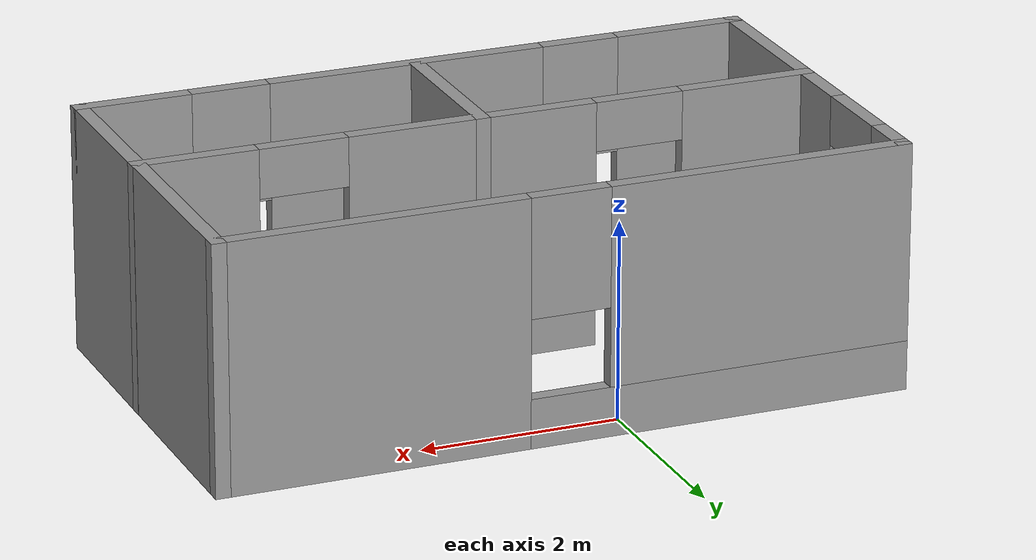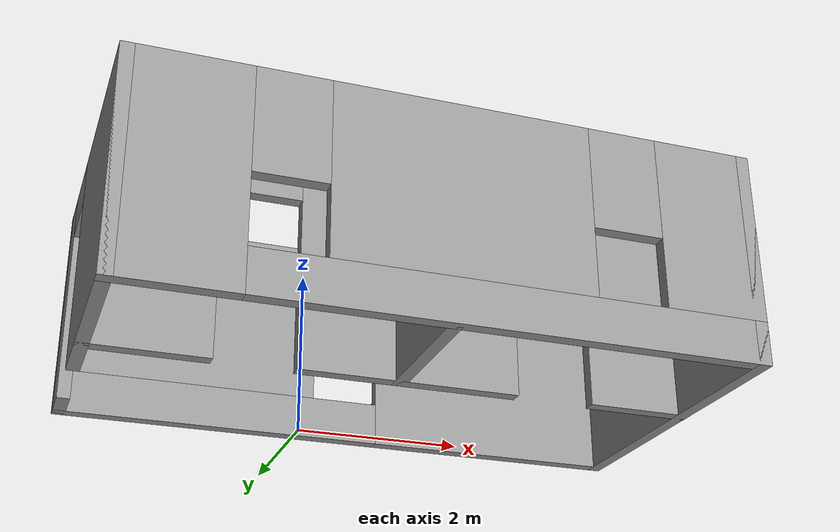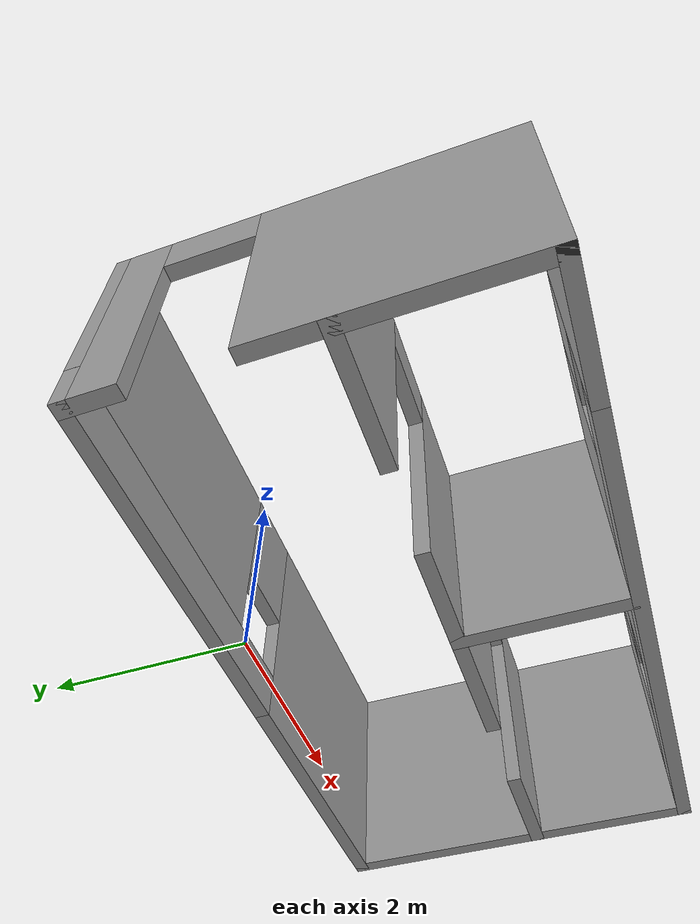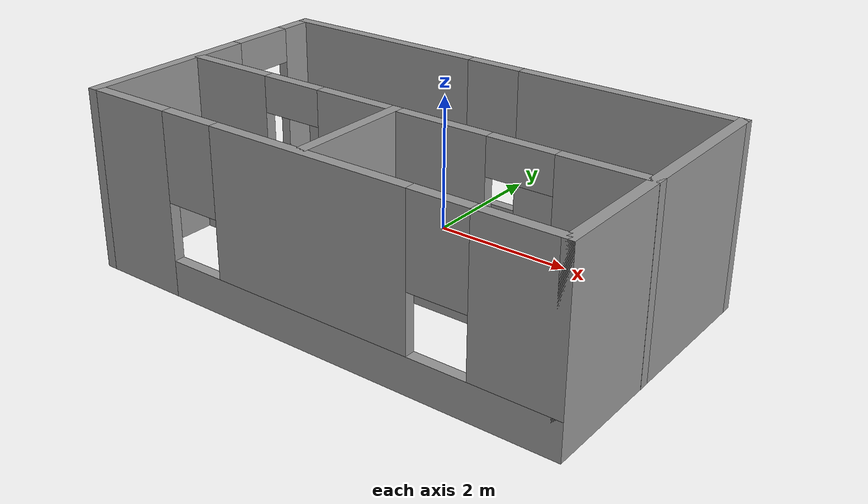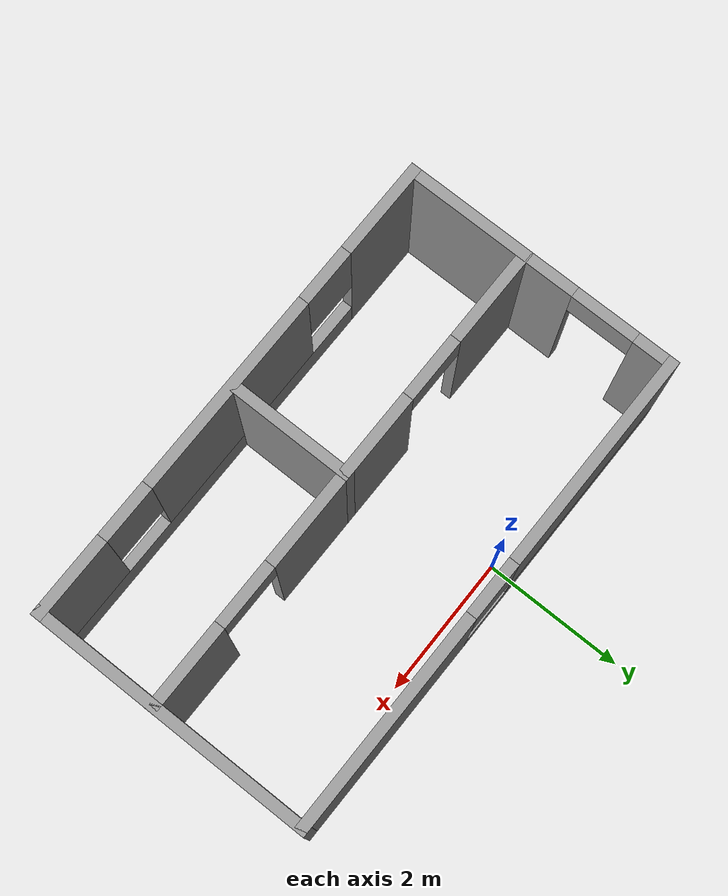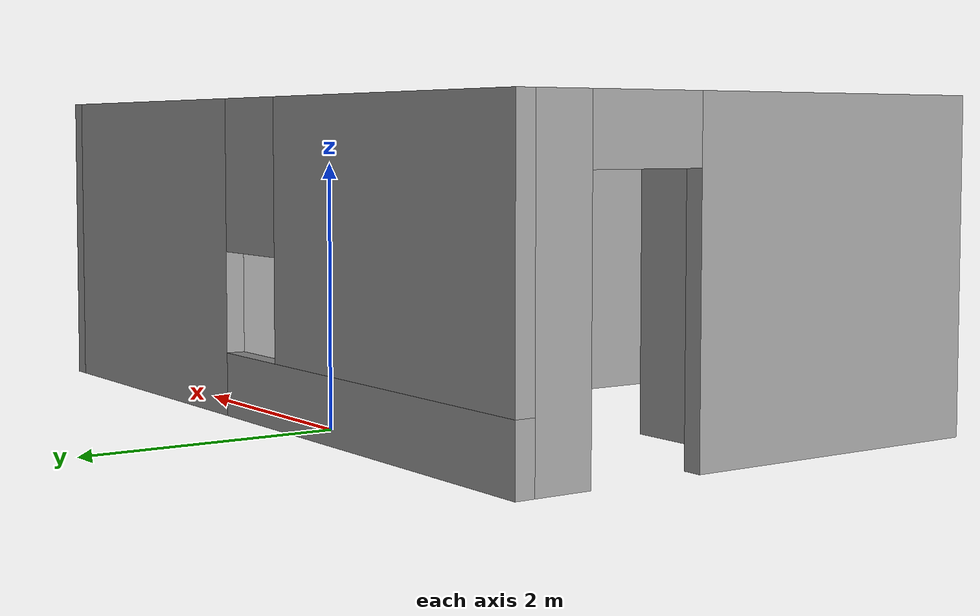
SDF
<?xml version='1.0'?>
<sdf version='1.7'>
  <model name='simulation'>
    <pose>0.653489 -1.65025 0 0 -0 0</pose>
    <link name='Wall_1'>
      <pose>-0.000739 -1.925 0 0 -0 0</pose>
      <visual name='Wall_1_Visual_0'>
        <pose>-2.82128 0 1.25 0 -0 0</pose>
        <geometry>
          <box>
            <size>1.35743 0.15 2.5</size>
          </box>
        </geometry>
        <material>
          <script>
            <uri>file://media/materials/scripts/gazebo.material</uri>
            <name>Gazebo/Grey</name>
          </script>
          <ambient>1 1 1 1</ambient>
        </material>
        <meta>
          <layer>0</layer>
        </meta>
      </visual>
      <collision name='Wall_1_Collision_0'>
        <geometry>
          <box>
            <size>1.35743 0.15 2.5</size>
          </box>
        </geometry>
        <pose>-2.82128 0 1.25 0 -0 0</pose>
      </collision>
      <visual name='Wall_1_Visual_1'>
        <pose>0.678717 0 0.25 0 -0 0</pose>
        <geometry>
          <box>
            <size>5.64257 0.15 0.5</size>
          </box>
        </geometry>
        <material>
          <script>
            <uri>file://media/materials/scripts/gazebo.material</uri>
            <name>Gazebo/Grey</name>
          </script>
          <ambient>1 1 1 1</ambient>
        </material>
        <meta>
          <layer>0</layer>
        </meta>
      </visual>
      <collision name='Wall_1_Collision_1'>
        <geometry>
          <box>
            <size>5.64257 0.15 0.5</size>
          </box>
        </geometry>
        <pose>0.678717 0 0.25 0 -0 0</pose>
      </collision>
      <visual name='Wall_1_Visual_2'>
        <pose>0.088473 0 1.5 0 -0 0</pose>
        <geometry>
          <box>
            <size>2.86208 0.15 2</size>
          </box>
        </geometry>
        <material>
          <script>
            <uri>file://media/materials/scripts/gazebo.material</uri>
            <name>Gazebo/Grey</name>
          </script>
          <ambient>1 1 1 1</ambient>
        </material>
        <meta>
          <layer>0</layer>
        </meta>
      </visual>
      <collision name='Wall_1_Collision_2'>
        <geometry>
          <box>
            <size>2.86208 0.15 2</size>
          </box>
        </geometry>
        <pose>0.088473 0 1.5 0 -0 0</pose>
      </collision>
      <visual name='Wall_1_Visual_3'>
        <pose>2.90976 0 1.5 0 -0 0</pose>
        <geometry>
          <box>
            <size>1.18049 0.15 2</size>
          </box>
        </geometry>
        <material>
          <script>
            <uri>file://media/materials/scripts/gazebo.material</uri>
            <name>Gazebo/Grey</name>
          </script>
          <ambient>1 1 1 1</ambient>
        </material>
        <meta>
          <layer>0</layer>
        </meta>
      </visual>
      <collision name='Wall_1_Collision_3'>
        <geometry>
          <box>
            <size>1.18049 0.15 2</size>
          </box>
        </geometry>
        <pose>2.90976 0 1.5 0 -0 0</pose>
      </collision>
      <visual name='Wall_1_Visual_4'>
        <pose>-1.74257 0 1.9 0 -0 0</pose>
        <geometry>
          <box>
            <size>0.8 0.15 1.2</size>
          </box>
        </geometry>
        <material>
          <script>
            <uri>file://media/materials/scripts/gazebo.material</uri>
            <name>Gazebo/Grey</name>
          </script>
          <ambient>1 1 1 1</ambient>
        </material>
        <meta>
          <layer>0</layer>
        </meta>
      </visual>
      <collision name='Wall_1_Collision_4'>
        <geometry>
          <box>
            <size>0.8 0.15 1.2</size>
          </box>
        </geometry>
        <pose>-1.74257 0 1.9 0 -0 0</pose>
      </collision>
      <visual name='Wall_1_Visual_5'>
        <pose>1.91951 0 1.9 0 -0 0</pose>
        <geometry>
          <box>
            <size>0.8 0.15 1.2</size>
          </box>
        </geometry>
        <material>
          <script>
            <uri>file://media/materials/scripts/gazebo.material</uri>
            <name>Gazebo/Grey</name>
          </script>
          <ambient>1 1 1 1</ambient>
        </material>
        <meta>
          <layer>0</layer>
        </meta>
      </visual>
      <collision name='Wall_1_Collision_5'>
        <geometry>
          <box>
            <size>0.8 0.15 1.2</size>
          </box>
        </geometry>
        <pose>1.91951 0 1.9 0 -0 0</pose>
      </collision>
    </link>
    <link name='Wall_11'>
      <pose>0.00074 -0.236083 0 0 -0 0</pose>
      <visual name='Wall_11_Visual_0'>
        <pose>-2.79699 0 1.25 0 -0 0</pose>
        <geometry>
          <box>
            <size>1.40601 0.15 2.5</size>
          </box>
        </geometry>
        <material>
          <script>
            <uri>file://media/materials/scripts/gazebo.material</uri>
            <name>Gazebo/Grey</name>
          </script>
          <ambient>1 1 1 1</ambient>
        </material>
        <meta>
          <layer>0</layer>
        </meta>
      </visual>
      <collision name='Wall_11_Collision_0'>
        <geometry>
          <box>
            <size>1.40601 0.15 2.5</size>
          </box>
        </geometry>
        <pose>-2.79699 0 1.25 0 -0 0</pose>
      </collision>
      <visual name='Wall_11_Visual_1'>
        <pose>0.076989 0 1.25 0 -0 0</pose>
        <geometry>
          <box>
            <size>2.54195 0.15 2.5</size>
          </box>
        </geometry>
        <material>
          <script>
            <uri>file://media/materials/scripts/gazebo.material</uri>
            <name>Gazebo/Grey</name>
          </script>
          <ambient>1 1 1 1</ambient>
        </material>
        <meta>
          <layer>0</layer>
        </meta>
      </visual>
      <collision name='Wall_11_Collision_1'>
        <geometry>
          <box>
            <size>2.54195 0.15 2.5</size>
          </box>
        </geometry>
        <pose>0.076989 0 1.25 0 -0 0</pose>
      </collision>
      <visual name='Wall_11_Visual_2'>
        <pose>2.87398 0 1.25 0 -0 0</pose>
        <geometry>
          <box>
            <size>1.25203 0.15 2.5</size>
          </box>
        </geometry>
        <material>
          <script>
            <uri>file://media/materials/scripts/gazebo.material</uri>
            <name>Gazebo/Grey</name>
          </script>
          <ambient>1 1 1 1</ambient>
        </material>
        <meta>
          <layer>0</layer>
        </meta>
      </visual>
      <collision name='Wall_11_Collision_2'>
        <geometry>
          <box>
            <size>1.25203 0.15 2.5</size>
          </box>
        </geometry>
        <pose>2.87398 0 1.25 0 -0 0</pose>
      </collision>
      <visual name='Wall_11_Visual_3'>
        <pose>-1.64399 0 2.25 0 -0 0</pose>
        <geometry>
          <box>
            <size>0.9 0.15 0.5</size>
          </box>
        </geometry>
        <material>
          <script>
            <uri>file://media/materials/scripts/gazebo.material</uri>
            <name>Gazebo/Grey</name>
          </script>
          <ambient>1 1 1 1</ambient>
        </material>
        <meta>
          <layer>0</layer>
        </meta>
      </visual>
      <collision name='Wall_11_Collision_3'>
        <geometry>
          <box>
            <size>0.9 0.15 0.5</size>
          </box>
        </geometry>
        <pose>-1.64399 0 2.25 0 -0 0</pose>
      </collision>
      <visual name='Wall_11_Visual_4'>
        <pose>1.79797 0 2.25 0 -0 0</pose>
        <geometry>
          <box>
            <size>0.9 0.15 0.5</size>
          </box>
        </geometry>
        <material>
          <script>
            <uri>file://media/materials/scripts/gazebo.material</uri>
            <name>Gazebo/Grey</name>
          </script>
          <ambient>1 1 1 1</ambient>
        </material>
        <meta>
          <layer>0</layer>
        </meta>
      </visual>
      <collision name='Wall_11_Collision_4'>
        <geometry>
          <box>
            <size>0.9 0.15 0.5</size>
          </box>
        </geometry>
        <pose>1.79797 0 2.25 0 -0 0</pose>
      </collision>
    </link>
    <link name='Wall_13'>
      <collision name='Wall_13_Collision'>
        <geometry>
          <box>
            <size>1.75 0.15 2.5</size>
          </box>
        </geometry>
        <pose>0 0 1.25 0 -0 0</pose>
      </collision>
      <visual name='Wall_13_Visual'>
        <pose>0 0 1.25 0 -0 0</pose>
        <geometry>
          <box>
            <size>1.75 0.15 2.5</size>
          </box>
        </geometry>
        <material>
          <script>
            <uri>file://media/materials/scripts/gazebo.material</uri>
            <name>Gazebo/Grey</name>
          </script>
          <ambient>1 1 1 1</ambient>
        </material>
        <meta>
          <layer>0</layer>
        </meta>
      </visual>
      <pose>-0.022328 -1.03608 0 0 -0 -1.5708</pose>
    </link>
    <link name='Wall_7'>
      <collision name='Wall_7_Collision'>
        <geometry>
          <box>
            <size>4 0.15 2.5</size>
          </box>
        </geometry>
        <pose>0 0 1.25 0 -0 0</pose>
      </collision>
      <visual name='Wall_7_Visual'>
        <pose>0 0 1.25 0 -0 0</pose>
        <geometry>
          <box>
            <size>4 0.15 2.5</size>
          </box>
        </geometry>
        <material>
          <script>
            <uri>file://media/materials/scripts/gazebo.material</uri>
            <name>Gazebo/Grey</name>
          </script>
          <ambient>1 1 1 1</ambient>
        </material>
        <meta>
          <layer>0</layer>
        </meta>
      </visual>
      <pose>3.42426 0 0 0 -0 1.5708</pose>
    </link>
    <link name='Wall_8'>
      <pose>-0.000739 1.925 0 0 -0 3.14159</pose>
      <visual name='Wall_8_Visual_0'>
        <pose>-1.93921 0 1.25 0 -0 0</pose>
        <geometry>
          <box>
            <size>3.12159 0.15 2.5</size>
          </box>
        </geometry>
        <material>
          <script>
            <uri>file://media/materials/scripts/gazebo.material</uri>
            <name>Gazebo/Grey</name>
          </script>
          <ambient>1 1 1 1</ambient>
        </material>
        <meta>
          <layer>0</layer>
        </meta>
      </visual>
      <collision name='Wall_8_Collision_0'>
        <geometry>
          <box>
            <size>3.12159 0.15 2.5</size>
          </box>
        </geometry>
        <pose>-1.93921 0 1.25 0 -0 0</pose>
      </collision>
      <visual name='Wall_8_Visual_1'>
        <pose>1.56079 0 0.25 0 -0 0</pose>
        <geometry>
          <box>
            <size>3.87841 0.15 0.5</size>
          </box>
        </geometry>
        <material>
          <script>
            <uri>file://media/materials/scripts/gazebo.material</uri>
            <name>Gazebo/Grey</name>
          </script>
          <ambient>1 1 1 1</ambient>
        </material>
        <meta>
          <layer>0</layer>
        </meta>
      </visual>
      <collision name='Wall_8_Collision_1'>
        <geometry>
          <box>
            <size>3.87841 0.15 0.5</size>
          </box>
        </geometry>
        <pose>1.56079 0 0.25 0 -0 0</pose>
      </collision>
      <visual name='Wall_8_Visual_2'>
        <pose>1.9608 0 1.5 0 -0 0</pose>
        <geometry>
          <box>
            <size>3.07841 0.15 2</size>
          </box>
        </geometry>
        <material>
          <script>
            <uri>file://media/materials/scripts/gazebo.material</uri>
            <name>Gazebo/Grey</name>
          </script>
          <ambient>1 1 1 1</ambient>
        </material>
        <meta>
          <layer>0</layer>
        </meta>
      </visual>
      <collision name='Wall_8_Collision_2'>
        <geometry>
          <box>
            <size>3.07841 0.15 2</size>
          </box>
        </geometry>
        <pose>1.9608 0 1.5 0 -0 0</pose>
      </collision>
      <visual name='Wall_8_Visual_3'>
        <pose>0.021589 0 1.9 0 -0 0</pose>
        <geometry>
          <box>
            <size>0.8 0.15 1.2</size>
          </box>
        </geometry>
        <material>
          <script>
            <uri>file://media/materials/scripts/gazebo.material</uri>
            <name>Gazebo/Grey</name>
          </script>
          <ambient>1 1 1 1</ambient>
        </material>
        <meta>
          <layer>0</layer>
        </meta>
      </visual>
      <collision name='Wall_8_Collision_3'>
        <geometry>
          <box>
            <size>0.8 0.15 1.2</size>
          </box>
        </geometry>
        <pose>0.021589 0 1.9 0 -0 0</pose>
      </collision>
    </link>
    <link name='Wall_9'>
      <pose>-3.42574 0 0 0 -0 -1.5708</pose>
      <visual name='Wall_9_Visual_0'>
        <pose>-1.7073 0 1.25 0 -0 0</pose>
        <geometry>
          <box>
            <size>0.585401 0.15 2.5</size>
          </box>
        </geometry>
        <material>
          <script>
            <uri>file://media/materials/scripts/gazebo.material</uri>
            <name>Gazebo/Grey</name>
          </script>
          <ambient>1 1 1 1</ambient>
        </material>
        <meta>
          <layer>0</layer>
        </meta>
      </visual>
      <collision name='Wall_9_Collision_0'>
        <geometry>
          <box>
            <size>0.585401 0.15 2.5</size>
          </box>
        </geometry>
        <pose>-1.7073 0 1.25 0 -0 0</pose>
      </collision>
      <visual name='Wall_9_Visual_1'>
        <pose>0.742701 0 1.25 0 -0 0</pose>
        <geometry>
          <box>
            <size>2.5146 0.15 2.5</size>
          </box>
        </geometry>
        <material>
          <script>
            <uri>file://media/materials/scripts/gazebo.material</uri>
            <name>Gazebo/Grey</name>
          </script>
          <ambient>1 1 1 1</ambient>
        </material>
        <meta>
          <layer>0</layer>
        </meta>
      </visual>
      <collision name='Wall_9_Collision_1'>
        <geometry>
          <box>
            <size>2.5146 0.15 2.5</size>
          </box>
        </geometry>
        <pose>0.742701 0 1.25 0 -0 0</pose>
      </collision>
      <visual name='Wall_9_Visual_2'>
        <pose>-0.964599 0 2.25 0 -0 0</pose>
        <geometry>
          <box>
            <size>0.9 0.15 0.5</size>
          </box>
        </geometry>
        <material>
          <script>
            <uri>file://media/materials/scripts/gazebo.material</uri>
            <name>Gazebo/Grey</name>
          </script>
          <ambient>1 1 1 1</ambient>
        </material>
        <meta>
          <layer>0</layer>
        </meta>
      </visual>
      <collision name='Wall_9_Collision_2'>
        <geometry>
          <box>
            <size>0.9 0.15 0.5</size>
          </box>
        </geometry>
        <pose>-0.964599 0 2.25 0 -0 0</pose>
      </collision>
    </link>
    <static>1</static>
  </model>
</sdf>
